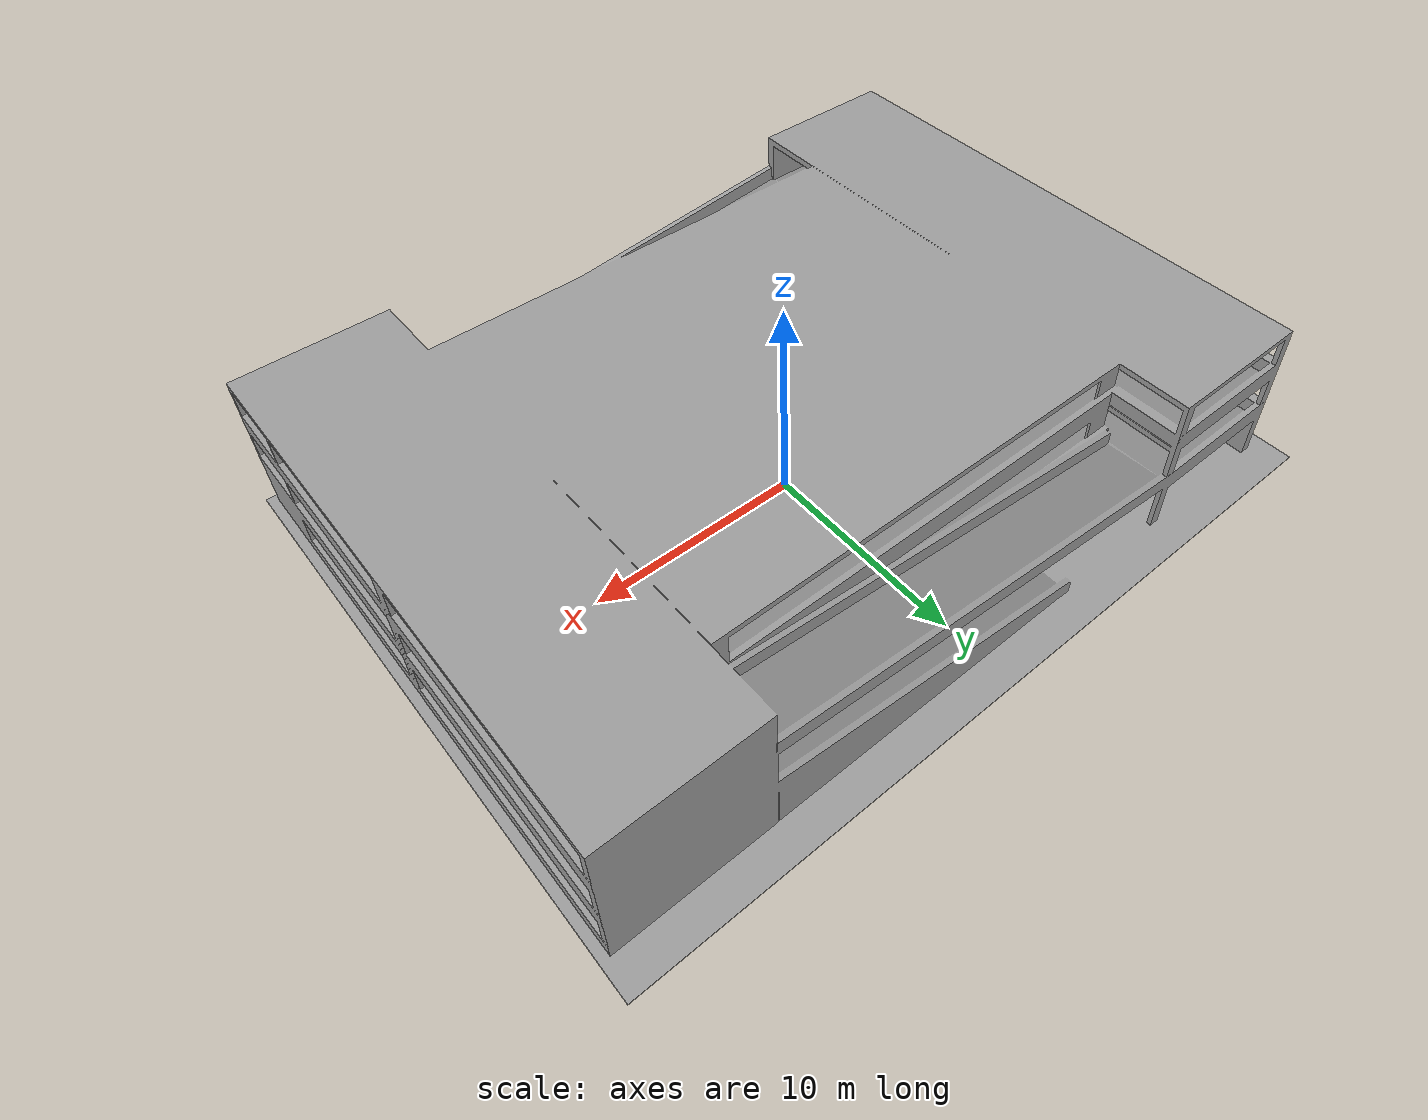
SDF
<?xml version="1.0"?>
<sdf version="1.6">
    <world name='parking_garage_world'>

        <!-- Physis Engine Configuration -->
        <physics name="5ms" type="ignored">
            <max_step_size>0.005</max_step_size>
            <real_time_factor>1.0</real_time_factor>
        </physics>

        <!-- Generic Plugins -->
        <plugin
            filename="gz-sim-physics-system"
            name="gz::sim::systems::Physics">
        </plugin>
        <plugin
            filename="gz-sim-user-commands-system"
            name="gz::sim::systems::UserCommands">
        </plugin>
        <plugin
            filename="gz-sim-scene-broadcaster-system"
            name="gz::sim::systems::SceneBroadcaster">
        </plugin>

        <!-- Sensors plugin -->
        <plugin
          filename="gz-sim-sensors-system"
          name="gz::sim::systems::Sensors">
          <render_engine>ogre2</render_engine>
        </plugin>
        <plugin
          filename="gz-sim-imu-system"
          name="gz::sim::systems::Imu">
        </plugin>

        <!-- GPS plugin -->
        <plugin
            filename="gz-sim-navsat-system"
            name="gz::sim::systems::NavSat">
        </plugin>

        <!-- Point Cloud Generator -->

        <!-- Set the coordinates for the world origin -->
        <spherical_coordinates>
            <surface_model>EARTH_WGS84</surface_model>
            <world_frame_orientation>ENU</world_frame_orientation>
            <latitude_deg>40.284796</latitude_deg>
            <longitude_deg>-3.821407</longitude_deg>
            <elevation>675</elevation>
            <heading_deg>0</heading_deg>
        </spherical_coordinates>

        <!-- Gravity configuration -->
        <gravity>0.0 0.0 -9.8</gravity>

        <!-- Scene configuration -->
        <scene>
            <ambient>0.4 0.4 0.4 1</ambient>
            <background>0.7 0.7 0.7 1</background>
            <shadows>false</shadows>
            <grid>false</grid>
            <origin_visual>false</origin_visual>
        </scene>

        <!-- Sun Light configuration -->
        <light name='sun'
            type='directional'>
            <cast_shadows>0</cast_shadows>
            <pose>0 0 10000 0 0 0</pose>
            <diffuse>0.8 0.8 0.8 1</diffuse>
            <specular>0.2 0.2 0.2 1</specular>
            <attenuation>
                <range>1000</range>
                <constant>0.9</constant>
                <linear>0.01</linear>
                <quadratic>0.001</quadratic>
            </attenuation>
            <direction>-0.5 0.1 -0.9</direction>
        </light>

        <!-- Include the parking_garage model -->
        <include>
            <uri>model://parking_garage</uri>
        </include>

    </world>
</sdf>

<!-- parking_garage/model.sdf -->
<sdf version="1.5">
  <model name="ground_plane">
    <static>true</static>
    <link name="ground_plane_link">
      <collision name="collision">
        <geometry>
          <mesh>
            <uri>model://parking_garage/meshes/parking_garage.dae</uri>
          </mesh>
        </geometry>
          <surface>
            <friction>
              <ode>
                <mu>0.9000000</mu>
                <mu2>0.1000000</mu2>
                <fdir1>0.000000 0.000000 1.000000</fdir1>
              </ode>
            </friction>
            <bounce>
              <restitution_coefficient>0.000000</restitution_coefficient>
              <threshold>100000.000000</threshold>
            </bounce>
            <contact>
              <ode>
                <soft_cfm>9.00000</soft_cfm>
                <soft_erp>9.00000</soft_erp>
                <kp>100.000000</kp>
                <kd>1.000000</kd>
                <max_vel>1000.000000</max_vel>
                <min_depth>0.001000</min_depth>
              </ode>
            </contact>
          </surface>
      </collision>
      <visual name="visual">
        <geometry>
          <mesh>
            <uri>model://parking_garage/meshes/parking_garage.dae</uri>
          </mesh>
        </geometry>
      </visual>
    </link>
  </model>
</sdf>
